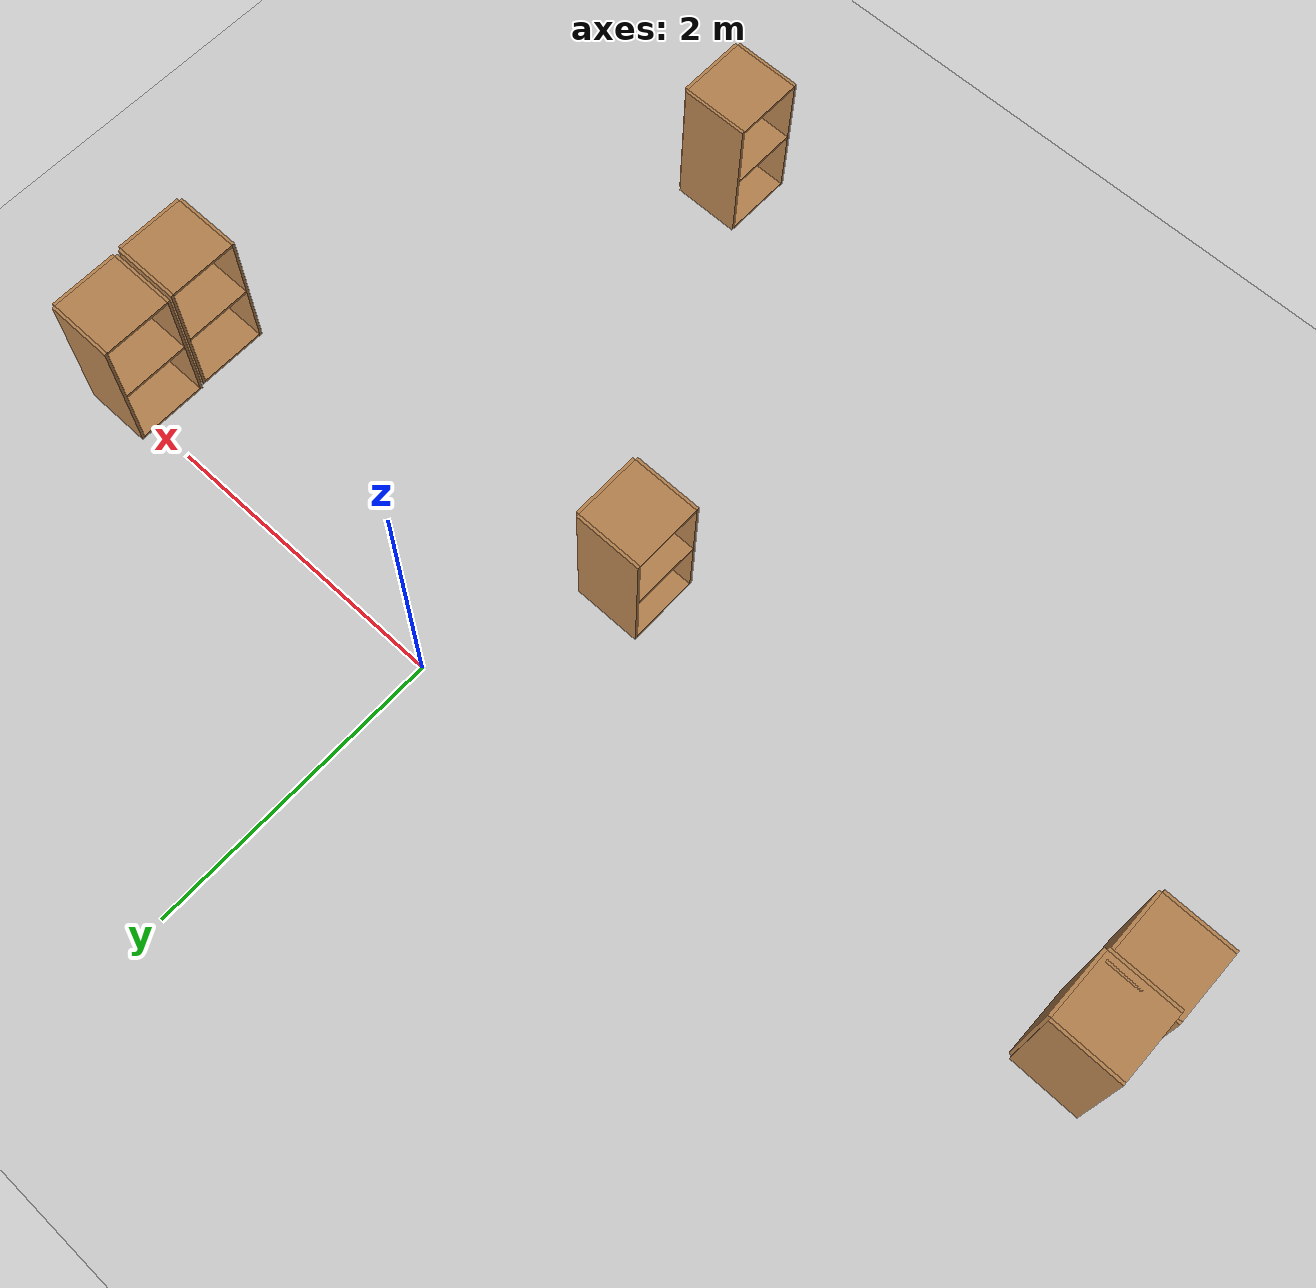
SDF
<sdf version="1.6">
 <world name="default">
  <light name="sun" type="directional">
   <pose>0 0 10 0 -0 0</pose>
   <diffuse>0.8 0.8 0.8 1</diffuse>
   <specular>0.2 0.2 0.2 1</specular>
   <attenuation>
    <range>1000</range>
    <constant>0.9</constant>
    <linear>0.01</linear>
    <quadratic>0.001</quadratic>
   </attenuation>
   <direction>-0.5 0.1 -0.9</direction>
  </light>
  <model name="ground_plane">
   <static>1</static>
   <link name="link">
    <collision name="collision">
     <geometry><plane><normal>0 0 1</normal><size>100 100</size></plane></geometry>
     <surface><friction><ode><mu>100</mu><mu2>50</mu2></ode></friction></surface>
    </collision>
    <visual name="visual">
     <cast_shadows>0</cast_shadows>
     <geometry><plane><normal>0 0 1</normal><size>100 100</size></plane></geometry>
     <material>
      <script><uri>file://media/materials/scripts/gazebo.material</uri><name>Gazebo/Grey</name></script>
     </material>
    </visual>
   </link>
  </model>
  <gravity>0 0 -9.8</gravity>
  <magnetic_field>6e-06 2.3e-05 -4.2e-05</magnetic_field>
  <atmosphere type="adiabatic"/>
  <physics name="default_physics" default="0" type="ode">
   <max_step_size>0.001</max_step_size>
   <real_time_factor>1</real_time_factor>
   <real_time_update_rate>1000</real_time_update_rate>
  </physics>
  <scene><ambient>0.4 0.4 0.4 1</ambient><background>0.7 0.7 0.7 1</background><shadows>1</shadows></scene>
  <spherical_coordinates>
   <surface_model>EARTH_WGS84</surface_model>
   <latitude_deg>0</latitude_deg>
   <longitude_deg>0</longitude_deg>
   <elevation>0</elevation>
   <heading_deg>0</heading_deg>
  </spherical_coordinates>
  <audio><device>default</device></audio>
  <model name="cabinet">
   <static>1</static>
   <link name="cabinet_bottom_plate">
    <inertial>
     <pose>0 0 -1 0 -0 0</pose>
     <inertia><ixx>2.05</ixx><ixy>0</ixy><ixz>0</ixz><iyy>2.05</iyy><iyz>0</iyz><izz>2.05</izz></inertia>
     <mass>25</mass>
    </inertial>
    <collision name="cabinet_bottom_plate_geom">
     <pose>0 0 0.01 0 -0 0</pose>
     <geometry><box><size>0.45 0.45 0.02</size></box></geometry>
    </collision>
    <visual name="cabinet_bottom_plate_geom_visual">
     <pose>0 0 0.01 0 -0 0</pose>
     <geometry><box><size>0.45 0.45 0.02</size></box></geometry>
     <material>
      <script><uri>file://media/materials/scripts/gazebo.material</uri><name>Gazebo/Wood</name></script>
     </material>
    </visual>
    <collision name="cabinet_bottom_plate_geom_cabinet_back_plate">
     <pose>0.235 0 0.51 0 -0 0</pose>
     <geometry><box><size>0.02 0.45 1.02</size></box></geometry>
    </collision>
    <visual name="cabinet_bottom_plate_geom_cabinet_back_plate_visual">
     <pose>0.235 0 0.51 0 -0 0</pose>
     <geometry><box><size>0.02 0.45 1.02</size></box></geometry>
     <material>
      <script><uri>file://media/materials/scripts/gazebo.material</uri><name>Gazebo/Wood</name></script>
     </material>
    </visual>
    <collision name="cabinet_bottom_plate_geom_cabinet_left_plate">
     <pose>0 0.235 0.51 0 -0 0</pose>
     <geometry><box><size>0.45 0.02 1.02</size></box></geometry>
    </collision>
    <visual name="cabinet_bottom_plate_geom_cabinet_left_plate_visual">
     <pose>0 0.235 0.51 0 -0 0</pose>
     <geometry><box><size>0.45 0.02 1.02</size></box></geometry>
     <material>
      <script><uri>file://media/materials/scripts/gazebo.material</uri><name>Gazebo/Wood</name></script>
     </material>
    </visual>
    <collision name="cabinet_bottom_plate_geom_cabinet_middle_plate">
     <pose>0 0 0.51 0 -0 0</pose>
     <geometry><box><size>0.45 0.45 0.02</size></box></geometry>
    </collision>
    <visual name="cabinet_bottom_plate_geom_cabinet_middle_plate_visual">
     <pose>0 0 0.51 0 -0 0</pose>
     <geometry><box><size>0.45 0.45 0.02</size></box></geometry>
     <material>
      <script><uri>file://media/materials/scripts/gazebo.material</uri><name>Gazebo/Wood</name></script>
     </material>
    </visual>
    <collision name="cabinet_bottom_plate_geom_cabinet_right_plate">
     <pose>0 -0.235 0.51 0 -0 0</pose>
     <geometry><box><size>0.45 0.02 1.02</size></box></geometry>
    </collision>
    <visual name="cabinet_bottom_plate_geom_cabinet_right_plate_visual">
     <pose>0 -0.235 0.51 0 -0 0</pose>
     <geometry><box><size>0.45 0.02 1.02</size></box></geometry>
     <material>
      <script><uri>file://media/materials/scripts/gazebo.material</uri><name>Gazebo/Wood</name></script>
     </material>
    </visual>
    <collision name="cabinet_bottom_plate_geom_cabinet_top_plate">
     <pose>0 0 1.01 0 -0 0</pose>
     <geometry><box><size>0.45 0.45 0.02</size></box></geometry>
    </collision>
    <visual name="cabinet_bottom_plate_geom_cabinet_top_plate_visual">
     <pose>0 0 1.01 0 -0 0</pose>
     <geometry><box><size>0.45 0.45 0.02</size></box></geometry>
     <material>
      <script><uri>file://media/materials/scripts/gazebo.material</uri><name>Gazebo/Wood</name></script>
     </material>
    </visual>
   </link>
   <pose>2.51306 -0.133763 0 0 -0 0</pose>
  </model>
  <model name="cabinet_0">
   <static>1</static>
   <link name="cabinet_bottom_plate">
    <inertial>
     <pose>0 0 -1 0 -0 0</pose>
     <inertia><ixx>2.05</ixx><ixy>0</ixy><ixz>0</ixz><iyy>2.05</iyy><iyz>0</iyz><izz>2.05</izz></inertia>
     <mass>25</mass>
    </inertial>
    <collision name="cabinet_bottom_plate_geom">
     <pose>0 0 0.01 0 -0 0</pose>
     <geometry><box><size>0.45 0.45 0.02</size></box></geometry>
    </collision>
    <visual name="cabinet_bottom_plate_geom_visual">
     <pose>0 0 0.01 0 -0 0</pose>
     <geometry><box><size>0.45 0.45 0.02</size></box></geometry>
     <material>
      <script><uri>file://media/materials/scripts/gazebo.material</uri><name>Gazebo/Wood</name></script>
     </material>
    </visual>
    <collision name="cabinet_bottom_plate_geom_cabinet_back_plate">
     <pose>0.235 0 0.51 0 -0 0</pose>
     <geometry><box><size>0.02 0.45 1.02</size></box></geometry>
    </collision>
    <visual name="cabinet_bottom_plate_geom_cabinet_back_plate_visual">
     <pose>0.235 0 0.51 0 -0 0</pose>
     <geometry><box><size>0.02 0.45 1.02</size></box></geometry>
     <material>
      <script><uri>file://media/materials/scripts/gazebo.material</uri><name>Gazebo/Wood</name></script>
     </material>
    </visual>
    <collision name="cabinet_bottom_plate_geom_cabinet_left_plate">
     <pose>0 0.235 0.51 0 -0 0</pose>
     <geometry><box><size>0.45 0.02 1.02</size></box></geometry>
    </collision>
    <visual name="cabinet_bottom_plate_geom_cabinet_left_plate_visual">
     <pose>0 0.235 0.51 0 -0 0</pose>
     <geometry><box><size>0.45 0.02 1.02</size></box></geometry>
     <material>
      <script><uri>file://media/materials/scripts/gazebo.material</uri><name>Gazebo/Wood</name></script>
     </material>
    </visual>
    <collision name="cabinet_bottom_plate_geom_cabinet_middle_plate">
     <pose>0 0 0.51 0 -0 0</pose>
     <geometry><box><size>0.45 0.45 0.02</size></box></geometry>
    </collision>
    <visual name="cabinet_bottom_plate_geom_cabinet_middle_plate_visual">
     <pose>0 0 0.51 0 -0 0</pose>
     <geometry><box><size>0.45 0.45 0.02</size></box></geometry>
     <material>
      <script><uri>file://media/materials/scripts/gazebo.material</uri><name>Gazebo/Wood</name></script>
     </material>
    </visual>
    <collision name="cabinet_bottom_plate_geom_cabinet_right_plate">
     <pose>0 -0.235 0.51 0 -0 0</pose>
     <geometry><box><size>0.45 0.02 1.02</size></box></geometry>
    </collision>
    <visual name="cabinet_bottom_plate_geom_cabinet_right_plate_visual">
     <pose>0 -0.235 0.51 0 -0 0</pose>
     <geometry><box><size>0.45 0.02 1.02</size></box></geometry>
     <material>
      <script><uri>file://media/materials/scripts/gazebo.material</uri><name>Gazebo/Wood</name></script>
     </material>
    </visual>
    <collision name="cabinet_bottom_plate_geom_cabinet_top_plate">
     <pose>0 0 1.01 0 -0 0</pose>
     <geometry><box><size>0.45 0.45 0.02</size></box></geometry>
    </collision>
    <visual name="cabinet_bottom_plate_geom_cabinet_top_plate_visual">
     <pose>0 0 1.01 0 -0 0</pose>
     <geometry><box><size>0.45 0.45 0.02</size></box></geometry>
     <material>
      <script><uri>file://media/materials/scripts/gazebo.material</uri><name>Gazebo/Wood</name></script>
     </material>
    </visual>
   </link>
   <pose>2.52737 -0.64204 0 0 -0 0</pose>
  </model>
  <model name="cabinet_1">
   <static>1</static>
   <link name="cabinet_bottom_plate">
    <inertial>
     <pose>0 0 -1 0 -0 0</pose>
     <inertia><ixx>2.05</ixx><ixy>0</ixy><ixz>0</ixz><iyy>2.05</iyy><iyz>0</iyz><izz>2.05</izz></inertia>
     <mass>25</mass>
    </inertial>
    <collision name="cabinet_bottom_plate_geom">
     <pose>0 0 0.01 0 -0 0</pose>
     <geometry><box><size>0.45 0.45 0.02</size></box></geometry>
    </collision>
    <visual name="cabinet_bottom_plate_geom_visual">
     <pose>0 0 0.01 0 -0 0</pose>
     <geometry><box><size>0.45 0.45 0.02</size></box></geometry>
     <material>
      <script><uri>file://media/materials/scripts/gazebo.material</uri><name>Gazebo/Wood</name></script>
     </material>
    </visual>
    <collision name="cabinet_bottom_plate_geom_cabinet_back_plate">
     <pose>0.235 0 0.51 0 -0 0</pose>
     <geometry><box><size>0.02 0.45 1.02</size></box></geometry>
    </collision>
    <visual name="cabinet_bottom_plate_geom_cabinet_back_plate_visual">
     <pose>0.235 0 0.51 0 -0 0</pose>
     <geometry><box><size>0.02 0.45 1.02</size></box></geometry>
     <material>
      <script><uri>file://media/materials/scripts/gazebo.material</uri><name>Gazebo/Wood</name></script>
     </material>
    </visual>
    <collision name="cabinet_bottom_plate_geom_cabinet_left_plate">
     <pose>0 0.235 0.51 0 -0 0</pose>
     <geometry><box><size>0.45 0.02 1.02</size></box></geometry>
    </collision>
    <visual name="cabinet_bottom_plate_geom_cabinet_left_plate_visual">
     <pose>0 0.235 0.51 0 -0 0</pose>
     <geometry><box><size>0.45 0.02 1.02</size></box></geometry>
     <material>
      <script><uri>file://media/materials/scripts/gazebo.material</uri><name>Gazebo/Wood</name></script>
     </material>
    </visual>
    <collision name="cabinet_bottom_plate_geom_cabinet_middle_plate">
     <pose>0 0 0.51 0 -0 0</pose>
     <geometry><box><size>0.45 0.45 0.02</size></box></geometry>
    </collision>
    <visual name="cabinet_bottom_plate_geom_cabinet_middle_plate_visual">
     <pose>0 0 0.51 0 -0 0</pose>
     <geometry><box><size>0.45 0.45 0.02</size></box></geometry>
     <material>
      <script><uri>file://media/materials/scripts/gazebo.material</uri><name>Gazebo/Wood</name></script>
     </material>
    </visual>
    <collision name="cabinet_bottom_plate_geom_cabinet_right_plate">
     <pose>0 -0.235 0.51 0 -0 0</pose>
     <geometry><box><size>0.45 0.02 1.02</size></box></geometry>
    </collision>
    <visual name="cabinet_bottom_plate_geom_cabinet_right_plate_visual">
     <pose>0 -0.235 0.51 0 -0 0</pose>
     <geometry><box><size>0.45 0.02 1.02</size></box></geometry>
     <material>
      <script><uri>file://media/materials/scripts/gazebo.material</uri><name>Gazebo/Wood</name></script>
     </material>
    </visual>
    <collision name="cabinet_bottom_plate_geom_cabinet_top_plate">
     <pose>0 0 1.01 0 -0 0</pose>
     <geometry><box><size>0.45 0.45 0.02</size></box></geometry>
    </collision>
    <visual name="cabinet_bottom_plate_geom_cabinet_top_plate_visual">
     <pose>0 0 1.01 0 -0 0</pose>
     <geometry><box><size>0.45 0.45 0.02</size></box></geometry>
     <material>
      <script><uri>file://media/materials/scripts/gazebo.material</uri><name>Gazebo/Wood</name></script>
     </material>
    </visual>
   </link>
   <pose>0.895962 -3.69232 0 0 -0 0</pose>
  </model>
  <model name="cabinet_2">
   <static>1</static>
   <link name="cabinet_bottom_plate">
    <inertial>
     <pose>0 0 -1 0 -0 0</pose>
     <inertia><ixx>2.05</ixx><ixy>0</ixy><ixz>0</ixz><iyy>2.05</iyy><iyz>0</iyz><izz>2.05</izz></inertia>
     <mass>25</mass>
    </inertial>
    <collision name="cabinet_bottom_plate_geom">
     <pose>0 0 0.01 0 -0 0</pose>
     <geometry><box><size>0.45 0.45 0.02</size></box></geometry>
    </collision>
    <visual name="cabinet_bottom_plate_geom_visual">
     <pose>0 0 0.01 0 -0 0</pose>
     <geometry><box><size>0.45 0.45 0.02</size></box></geometry>
     <material>
      <script><uri>file://media/materials/scripts/gazebo.material</uri><name>Gazebo/Wood</name></script>
     </material>
    </visual>
    <collision name="cabinet_bottom_plate_geom_cabinet_back_plate">
     <pose>0.235 0 0.51 0 -0 0</pose>
     <geometry><box><size>0.02 0.45 1.02</size></box></geometry>
    </collision>
    <visual name="cabinet_bottom_plate_geom_cabinet_back_plate_visual">
     <pose>0.235 0 0.51 0 -0 0</pose>
     <geometry><box><size>0.02 0.45 1.02</size></box></geometry>
     <material>
      <script><uri>file://media/materials/scripts/gazebo.material</uri><name>Gazebo/Wood</name></script>
     </material>
    </visual>
    <collision name="cabinet_bottom_plate_geom_cabinet_left_plate">
     <pose>0 0.235 0.51 0 -0 0</pose>
     <geometry><box><size>0.45 0.02 1.02</size></box></geometry>
    </collision>
    <visual name="cabinet_bottom_plate_geom_cabinet_left_plate_visual">
     <pose>0 0.235 0.51 0 -0 0</pose>
     <geometry><box><size>0.45 0.02 1.02</size></box></geometry>
     <material>
      <script><uri>file://media/materials/scripts/gazebo.material</uri><name>Gazebo/Wood</name></script>
     </material>
    </visual>
    <collision name="cabinet_bottom_plate_geom_cabinet_middle_plate">
     <pose>0 0 0.51 0 -0 0</pose>
     <geometry><box><size>0.45 0.45 0.02</size></box></geometry>
    </collision>
    <visual name="cabinet_bottom_plate_geom_cabinet_middle_plate_visual">
     <pose>0 0 0.51 0 -0 0</pose>
     <geometry><box><size>0.45 0.45 0.02</size></box></geometry>
     <material>
      <script><uri>file://media/materials/scripts/gazebo.material</uri><name>Gazebo/Wood</name></script>
     </material>
    </visual>
    <collision name="cabinet_bottom_plate_geom_cabinet_right_plate">
     <pose>0 -0.235 0.51 0 -0 0</pose>
     <geometry><box><size>0.45 0.02 1.02</size></box></geometry>
    </collision>
    <visual name="cabinet_bottom_plate_geom_cabinet_right_plate_visual">
     <pose>0 -0.235 0.51 0 -0 0</pose>
     <geometry><box><size>0.45 0.02 1.02</size></box></geometry>
     <material>
      <script><uri>file://media/materials/scripts/gazebo.material</uri><name>Gazebo/Wood</name></script>
     </material>
    </visual>
    <collision name="cabinet_bottom_plate_geom_cabinet_top_plate">
     <pose>0 0 1.01 0 -0 0</pose>
     <geometry><box><size>0.45 0.45 0.02</size></box></geometry>
    </collision>
    <visual name="cabinet_bottom_plate_geom_cabinet_top_plate_visual">
     <pose>0 0 1.01 0 -0 0</pose>
     <geometry><box><size>0.45 0.45 0.02</size></box></geometry>
     <material>
      <script><uri>file://media/materials/scripts/gazebo.material</uri><name>Gazebo/Wood</name></script>
     </material>
    </visual>
   </link>
   <pose>-0.548619 -1.20735 0 0 -0 0</pose>
  </model>
  <model name="cabinet_3">
   <static>1</static>
   <link name="cabinet_bottom_plate">
    <inertial>
     <pose>0 0 -1 0 -0 0</pose>
     <inertia><ixx>2.05</ixx><ixy>0</ixy><ixz>0</ixz><iyy>2.05</iyy><iyz>0</iyz><izz>2.05</izz></inertia>
     <mass>25</mass>
    </inertial>
    <collision name="cabinet_bottom_plate_geom">
     <pose>0 0 0.01 0 -0 0</pose>
     <geometry><box><size>0.45 0.45 0.02</size></box></geometry>
    </collision>
    <visual name="cabinet_bottom_plate_geom_visual">
     <pose>0 0 0.01 0 -0 0</pose>
     <geometry><box><size>0.45 0.45 0.02</size></box></geometry>
     <material>
      <script><uri>file://media/materials/scripts/gazebo.material</uri><name>Gazebo/Wood</name></script>
     </material>
    </visual>
    <collision name="cabinet_bottom_plate_geom_cabinet_back_plate">
     <pose>0.235 0 0.51 0 -0 0</pose>
     <geometry><box><size>0.02 0.45 1.02</size></box></geometry>
    </collision>
    <visual name="cabinet_bottom_plate_geom_cabinet_back_plate_visual">
     <pose>0.235 0 0.51 0 -0 0</pose>
     <geometry><box><size>0.02 0.45 1.02</size></box></geometry>
     <material>
      <script><uri>file://media/materials/scripts/gazebo.material</uri><name>Gazebo/Wood</name></script>
     </material>
    </visual>
    <collision name="cabinet_bottom_plate_geom_cabinet_left_plate">
     <pose>0 0.235 0.51 0 -0 0</pose>
     <geometry><box><size>0.45 0.02 1.02</size></box></geometry>
    </collision>
    <visual name="cabinet_bottom_plate_geom_cabinet_left_plate_visual">
     <pose>0 0.235 0.51 0 -0 0</pose>
     <geometry><box><size>0.45 0.02 1.02</size></box></geometry>
     <material>
      <script><uri>file://media/materials/scripts/gazebo.material</uri><name>Gazebo/Wood</name></script>
     </material>
    </visual>
    <collision name="cabinet_bottom_plate_geom_cabinet_middle_plate">
     <pose>0 0 0.51 0 -0 0</pose>
     <geometry><box><size>0.45 0.45 0.02</size></box></geometry>
    </collision>
    <visual name="cabinet_bottom_plate_geom_cabinet_middle_plate_visual">
     <pose>0 0 0.51 0 -0 0</pose>
     <geometry><box><size>0.45 0.45 0.02</size></box></geometry>
     <material>
      <script><uri>file://media/materials/scripts/gazebo.material</uri><name>Gazebo/Wood</name></script>
     </material>
    </visual>
    <collision name="cabinet_bottom_plate_geom_cabinet_right_plate">
     <pose>0 -0.235 0.51 0 -0 0</pose>
     <geometry><box><size>0.45 0.02 1.02</size></box></geometry>
    </collision>
    <visual name="cabinet_bottom_plate_geom_cabinet_right_plate_visual">
     <pose>0 -0.235 0.51 0 -0 0</pose>
     <geometry><box><size>0.45 0.02 1.02</size></box></geometry>
     <material>
      <script><uri>file://media/materials/scripts/gazebo.material</uri><name>Gazebo/Wood</name></script>
     </material>
    </visual>
    <collision name="cabinet_bottom_plate_geom_cabinet_top_plate">
     <pose>0 0 1.01 0 -0 0</pose>
     <geometry><box><size>0.45 0.45 0.02</size></box></geometry>
    </collision>
    <visual name="cabinet_bottom_plate_geom_cabinet_top_plate_visual">
     <pose>0 0 1.01 0 -0 0</pose>
     <geometry><box><size>0.45 0.45 0.02</size></box></geometry>
     <material>
      <script><uri>file://media/materials/scripts/gazebo.material</uri><name>Gazebo/Wood</name></script>
     </material>
    </visual>
   </link>
   <pose>-4.08281 -1.2204 0 0 -0 0</pose>
  </model>
  <model name="cabinet_4">
   <static>1</static>
   <link name="cabinet_bottom_plate">
    <inertial>
     <pose>0 0 -1 0 -0 0</pose>
     <inertia><ixx>2.05</ixx><ixy>0</ixy><ixz>0</ixz><iyy>2.05</iyy><iyz>0</iyz><izz>2.05</izz></inertia>
     <mass>25</mass>
    </inertial>
    <collision name="cabinet_bottom_plate_geom">
     <pose>0 0 0.01 0 -0 0</pose>
     <geometry><box><size>0.45 0.45 0.02</size></box></geometry>
    </collision>
    <visual name="cabinet_bottom_plate_geom_visual">
     <pose>0 0 0.01 0 -0 0</pose>
     <geometry><box><size>0.45 0.45 0.02</size></box></geometry>
     <material>
      <script><uri>file://media/materials/scripts/gazebo.material</uri><name>Gazebo/Wood</name></script>
     </material>
    </visual>
    <collision name="cabinet_bottom_plate_geom_cabinet_back_plate">
     <pose>0.235 0 0.51 0 -0 0</pose>
     <geometry><box><size>0.02 0.45 1.02</size></box></geometry>
    </collision>
    <visual name="cabinet_bottom_plate_geom_cabinet_back_plate_visual">
     <pose>0.235 0 0.51 0 -0 0</pose>
     <geometry><box><size>0.02 0.45 1.02</size></box></geometry>
     <material>
      <script><uri>file://media/materials/scripts/gazebo.material</uri><name>Gazebo/Wood</name></script>
     </material>
    </visual>
    <collision name="cabinet_bottom_plate_geom_cabinet_left_plate">
     <pose>0 0.235 0.51 0 -0 0</pose>
     <geometry><box><size>0.45 0.02 1.02</size></box></geometry>
    </collision>
    <visual name="cabinet_bottom_plate_geom_cabinet_left_plate_visual">
     <pose>0 0.235 0.51 0 -0 0</pose>
     <geometry><box><size>0.45 0.02 1.02</size></box></geometry>
     <material>
      <script><uri>file://media/materials/scripts/gazebo.material</uri><name>Gazebo/Wood</name></script>
     </material>
    </visual>
    <collision name="cabinet_bottom_plate_geom_cabinet_middle_plate">
     <pose>0 0 0.51 0 -0 0</pose>
     <geometry><box><size>0.45 0.45 0.02</size></box></geometry>
    </collision>
    <visual name="cabinet_bottom_plate_geom_cabinet_middle_plate_visual">
     <pose>0 0 0.51 0 -0 0</pose>
     <geometry><box><size>0.45 0.45 0.02</size></box></geometry>
     <material>
      <script><uri>file://media/materials/scripts/gazebo.material</uri><name>Gazebo/Wood</name></script>
     </material>
    </visual>
    <collision name="cabinet_bottom_plate_geom_cabinet_right_plate">
     <pose>0 -0.235 0.51 0 -0 0</pose>
     <geometry><box><size>0.45 0.02 1.02</size></box></geometry>
    </collision>
    <visual name="cabinet_bottom_plate_geom_cabinet_right_plate_visual">
     <pose>0 -0.235 0.51 0 -0 0</pose>
     <geometry><box><size>0.45 0.02 1.02</size></box></geometry>
     <material>
      <script><uri>file://media/materials/scripts/gazebo.material</uri><name>Gazebo/Wood</name></script>
     </material>
    </visual>
    <collision name="cabinet_bottom_plate_geom_cabinet_top_plate">
     <pose>0 0 1.01 0 -0 0</pose>
     <geometry><box><size>0.45 0.45 0.02</size></box></geometry>
    </collision>
    <visual name="cabinet_bottom_plate_geom_cabinet_top_plate_visual">
     <pose>0 0 1.01 0 -0 0</pose>
     <geometry><box><size>0.45 0.45 0.02</size></box></geometry>
     <material>
      <script><uri>file://media/materials/scripts/gazebo.material</uri><name>Gazebo/Wood</name></script>
     </material>
    </visual>
   </link>
   <pose>-4.05707 -0.804627 0 0 -0 0</pose>
  </model>
 </world>
</sdf>
